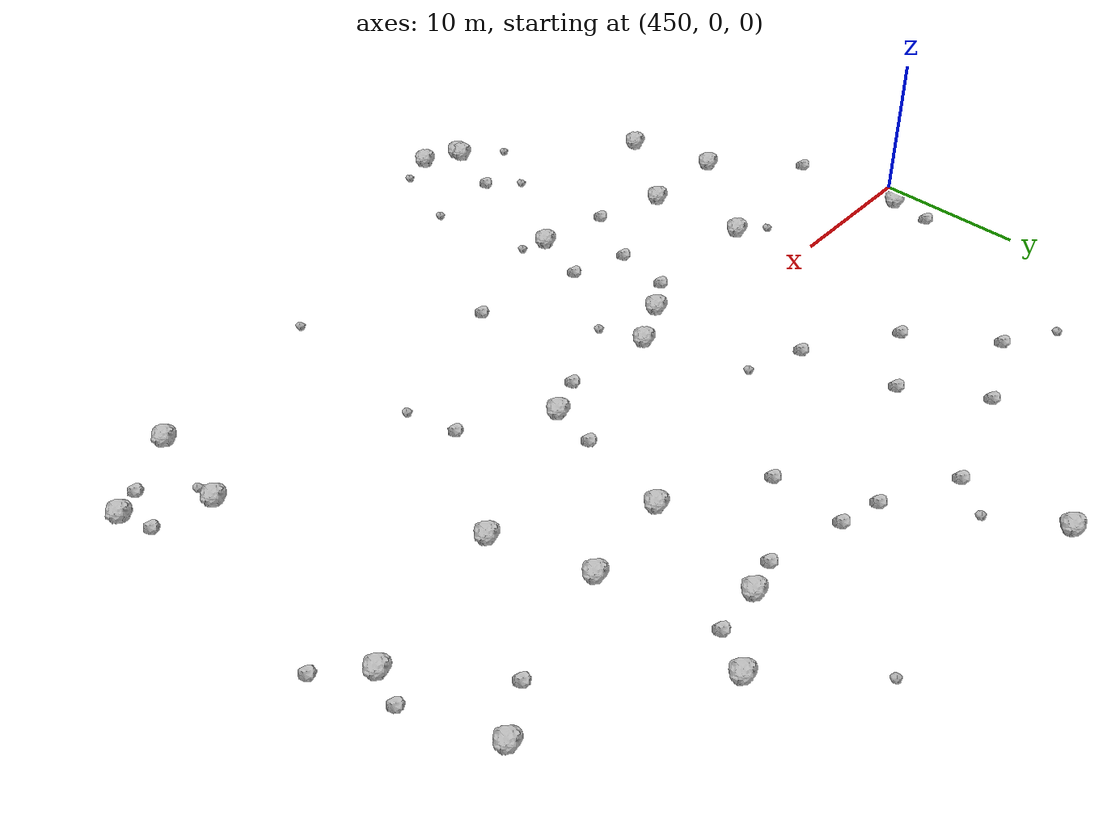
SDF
<sdf version="1.6">
 <world name="default">
  <include><uri>model://sun</uri></include>
  <model name="rock1_12_4">
   <include><uri>model://rock1</uri><pose>506.00082881102423 -14.00354993009342 0.5 0 0 0</pose></include>
  </model>
  <model name="rock1_12_5">
   <include><uri>model://rock1</uri><pose>470.75983940656573 -28.159022854922505 0.5 0 0 0</pose></include>
  </model>
  <model name="rock1_12_6">
   <include><uri>model://rock1</uri><pose>468.2861945489545 -26.779284265966595 0.5 0 0 0</pose></include>
  </model>
  <model name="rock1_12_7">
   <include><uri>model://rock1</uri><pose>484.0714281454891 -1.545612902887477 0.5 0 0 0</pose></include>
  </model>
  <model name="rock1_12_8">
   <include><uri>model://rock1</uri><pose>451.7981936699068 1.501709684631404 0.5 0 0 0</pose></include>
  </model>
  <model name="rock1_12_9">
   <include><uri>model://rock1</uri><pose>491.78276207840474 8.490965312319119 0.5 0 0 0</pose></include>
  </model>
  <model name="rock1_12_10">
   <include><uri>model://rock1</uri><pose>475.65354835929236 -2.0129717300472123 0.5 0 0 0</pose></include>
  </model>
  <model name="rock1_12_11">
   <include><uri>model://rock1</uri><pose>485.9051232466866 7.710449250789871 0.5 0 0 0</pose></include>
  </model>
  <model name="rock1_12_12">
   <include><uri>model://rock1</uri><pose>503.27635939678413 4.480707786478412 0.5 0 0 0</pose></include>
  </model>
  <model name="rock1_12_13">
   <include><uri>model://rock1</uri><pose>462.87643531592585 -11.721329706667536 0.5 0 0 0</pose></include>
  </model>
  <model name="rock1_12_14">
   <include><uri>model://rock1</uri><pose>487.16012141373324 15.4401916112054 0.5 0 0 0</pose></include>
  </model>
  <model name="rock1_12_15">
   <include><uri>model://rock1</uri><pose>472.65675736027623 -3.550665643800187 0.5 0 0 0</pose></include>
  </model>
  <model name="rock1_12_16">
   <include><uri>model://rock1</uri><pose>501.8377682154772 -11.130903647111058 0.5 0 0 0</pose></include>
  </model>
  <model name="rock1_12_17">
   <include><uri>model://rock1</uri><pose>500.9745738220889 -17.248223604006824 0.5 0 0 0</pose></include>
  </model>
  <model name="rock1_12_18">
   <include><uri>model://rock1</uri><pose>456.8678979030952 -11.806566497553938 0.5 0 0 0</pose></include>
  </model>
  <model name="rock1_12_19">
   <include><uri>model://rock1</uri><pose>458.29496394059623 -17.872003540794566 0.5 0 0 0</pose></include>
  </model>
  <model name="rock1_12_20">
   <include><uri>model://rock1</uri><pose>462.259215415607 -4.899995074613727 0.5 0 0 0</pose></include>
  </model>
  <model name="rock1_12_21">
   <include><uri>model://rock1</uri><pose>472.18237019428733 -14.072807920364852 0.5 0 0 0</pose></include>
  </model>
  <model name="rock1_12_22">
   <include><uri>model://rock1</uri><pose>501.9099316909221 12.180261807584216 0.5 0 0 0</pose></include>
  </model>
  <model name="rock1_12_23">
   <include><uri>model://rock1</uri><pose>491.6279559372151 18.102983060361126 0.5 0 0 0</pose></include>
  </model>
  <model name="rock1_12_24">
   <include><uri>model://rock1</uri><pose>472.15531113640714 25.78984005301649 0.5 0 0 0</pose></include>
  </model>
  <model name="rock1_12_25">
   <include><uri>model://rock1</uri><pose>493.710137722795 2.3063197120666956 0.5 0 0 0</pose></include>
  </model>
  <model name="rock1_12_26">
   <include><uri>model://rock1</uri><pose>468.29445278459207 -27.20994838175168 0.5 0 0 0</pose></include>
  </model>
  <model name="rock2_12_0">
   <include><uri>model://rock2</uri><pose>505.3613460510248 -11.844496029448525 0.3 0 0 0</pose></include>
  </model>
  <model name="rock2_12_1">
   <include><uri>model://rock2</uri><pose>468.689180828331 12.449236105660908 0.3 0 0 0</pose></include>
  </model>
  <model name="rock2_12_2">
   <include><uri>model://rock2</uri><pose>470.37575003546084 -5.012658501139885 0.3 0 0 0</pose></include>
  </model>
  <model name="rock2_12_3">
   <include><uri>model://rock2</uri><pose>484.6095550804166 1.520200038163992 0.3 0 0 0</pose></include>
  </model>
  <model name="rock2_12_4">
   <include><uri>model://rock2</uri><pose>452.2024382868069 -6.285981929178341 0.3 0 0 0</pose></include>
  </model>
  <model name="rock2_12_5">
   <include><uri>model://rock2</uri><pose>465.79703617623284 17.399306742787374 0.3 0 0 0</pose></include>
  </model>
  <model name="rock2_12_6">
   <include><uri>model://rock2</uri><pose>480.5223581549514 -11.7339234943307 0.3 0 0 0</pose></include>
  </model>
  <model name="rock2_12_7">
   <include><uri>model://rock2</uri><pose>498.9883385661664 10.269090524914056 0.3 0 0 0</pose></include>
  </model>
  <model name="rock2_12_8">
   <include><uri>model://rock2</uri><pose>504.0106335669259 6.710316634070971 0.3 0 0 0</pose></include>
  </model>
  <model name="rock2_12_9">
   <include><uri>model://rock2</uri><pose>469.6724970586939 -8.958517369308307 0.3 0 0 0</pose></include>
  </model>
  <model name="rock2_12_10">
   <include><uri>model://rock2</uri><pose>464.14726761572024 9.870462418773634 0.3 0 0 0</pose></include>
  </model>
  <model name="rock2_12_11">
   <include><uri>model://rock2</uri><pose>484.95786213836845 14.874033901153446 0.3 0 0 0</pose></include>
  </model>
  <model name="rock2_12_12">
   <include><uri>model://rock2</uri><pose>477.520490808263 16.8896791207345 0.3 0 0 0</pose></include>
  </model>
  <model name="rock2_12_13">
   <include><uri>model://rock2</uri><pose>480.09963468622766 16.178948974897423 0.3 0 0 0</pose></include>
  </model>
  <model name="rock2_12_14">
   <include><uri>model://rock2</uri><pose>504.4139100333807 -14.878953309733927 0.3 0 0 0</pose></include>
  </model>
  <model name="rock2_12_15">
   <include><uri>model://rock2</uri><pose>472.85712201225334 19.383028754737666 0.3 0 0 0</pose></include>
  </model>
  <model name="rock2_12_16">
   <include><uri>model://rock2</uri><pose>460.6722737588828 15.245897832820354 0.3 0 0 0</pose></include>
  </model>
  <model name="rock2_12_17">
   <include><uri>model://rock2</uri><pose>473.35798189978857 -10.157859751022468 0.3 0 0 0</pose></include>
  </model>
  <model name="rock2_12_18">
   <include><uri>model://rock2</uri><pose>469.75981473774794 -22.49363228735479 0.3 0 0 0</pose></include>
  </model>
  <model name="rock2_12_19">
   <include><uri>model://rock2</uri><pose>479.8395706031819 11.332345180086826 0.3 0 0 0</pose></include>
  </model>
  <model name="rock2_12_20">
   <include><uri>model://rock2</uri><pose>490.136413848976 15.700578457204095 0.3 0 0 0</pose></include>
  </model>
  <model name="rock2_12_21">
   <include><uri>model://rock2</uri><pose>467.3189032644052 -13.231980351796736 0.3 0 0 0</pose></include>
  </model>
  <model name="rock2_12_22">
   <include><uri>model://rock2</uri><pose>489.2094163165113 -4.930448743138946 0.3 0 0 0</pose></include>
  </model>
  <model name="rock2_12_23">
   <include><uri>model://rock2</uri><pose>469.7733383528467 6.101371001553105 0.3 0 0 0</pose></include>
  </model>
  <model name="rock2_12_24">
   <include><uri>model://rock2</uri><pose>481.5224287145491 -2.677923450496749 0.3 0 0 0</pose></include>
  </model>
  <model name="rock2_12_25">
   <include><uri>model://rock2</uri><pose>505.68460771512997 2.0897314226409094 0.3 0 0 0</pose></include>
  </model>
  <model name="rock2_12_26">
   <include><uri>model://rock2</uri><pose>452.16053154761306 4.418538323747107 0.3 0 0 0</pose></include>
  </model>
  <model name="rock3_12_0">
   <include><uri>model://rock3</uri><pose>457.25503694339466 17.275093834239954 0.2 0 0 0</pose></include>
  </model>
  <model name="rock3_12_1">
   <include><uri>model://rock3</uri><pose>465.65242582868694 -24.779719086006054 0.2 0 0 0</pose></include>
  </model>
  <model name="rock3_12_2">
   <include><uri>model://rock3</uri><pose>489.14228695761625 -19.658225341292024 0.2 0 0 0</pose></include>
  </model>
  <model name="rock3_12_3">
   <include><uri>model://rock3</uri><pose>486.703334730731 23.834353694237194 0.2 0 0 0</pose></include>
  </model>
  <model name="rock3_12_4">
   <include><uri>model://rock3</uri><pose>460.3642140317605 -3.5839204451861555 0.2 0 0 0</pose></include>
  </model>
  <model name="rock3_12_5">
   <include><uri>model://rock3</uri><pose>472.9242526228128 -27.39517730783818 0.2 0 0 0</pose></include>
  </model>
  <model name="rock3_12_6">
   <include><uri>model://rock3</uri><pose>473.3549492233657 4.6391717737271065 0.2 0 0 0</pose></include>
  </model>
  <model name="rock3_12_7">
   <include><uri>model://rock3</uri><pose>473.66354839218684 -14.819524907659265 0.2 0 0 0</pose></include>
  </model>
  <model name="rock3_12_8">
   <include><uri>model://rock3</uri><pose>489.9721103344174 -8.381822380658761 0.2 0 0 0</pose></include>
  </model>
  <model name="rock3_12_9">
   <include><uri>model://rock3</uri><pose>501.864171724842 -12.564782471825215 0.2 0 0 0</pose></include>
  </model>
  <model name="rock3_12_10">
   <include><uri>model://rock3</uri><pose>467.86469396877834 -20.698800970880807 0.2 0 0 0</pose></include>
  </model>
  <model name="rock3_12_11">
   <include><uri>model://rock3</uri><pose>476.5758272047378 -5.011245986402201 0.2 0 0 0</pose></include>
  </model>
  <model name="rock3_12_12">
   <include><uri>model://rock3</uri><pose>474.716270999517 -22.075648205457316 0.2 0 0 0</pose></include>
  </model>
  <model name="rock3_12_13">
   <include><uri>model://rock3</uri><pose>474.51280487025747 21.57103222374503 0.2 0 0 0</pose></include>
  </model>
 </world>
</sdf>
